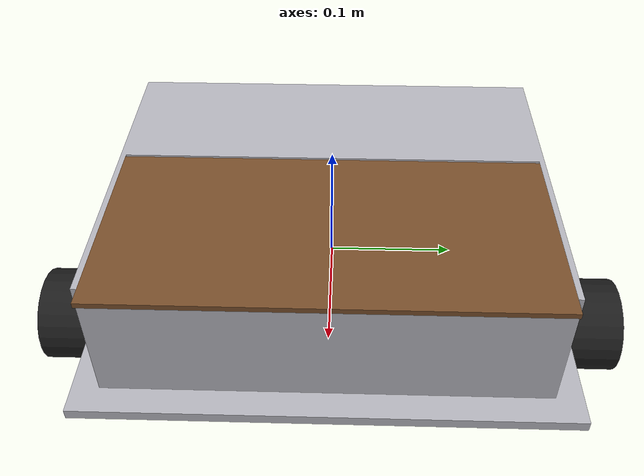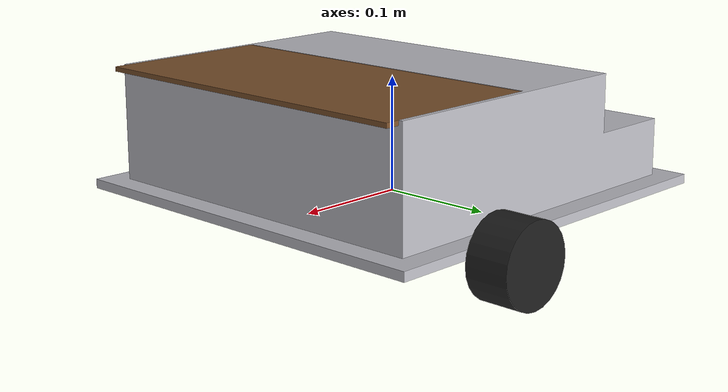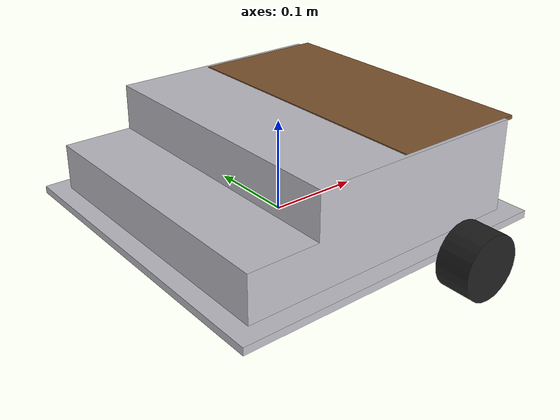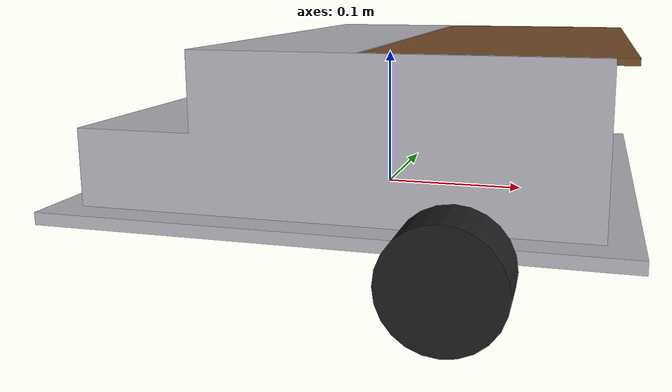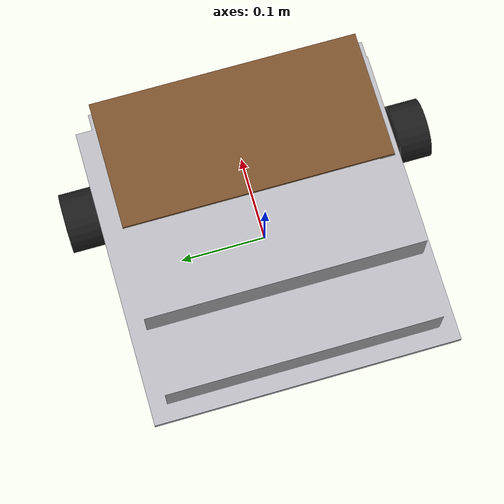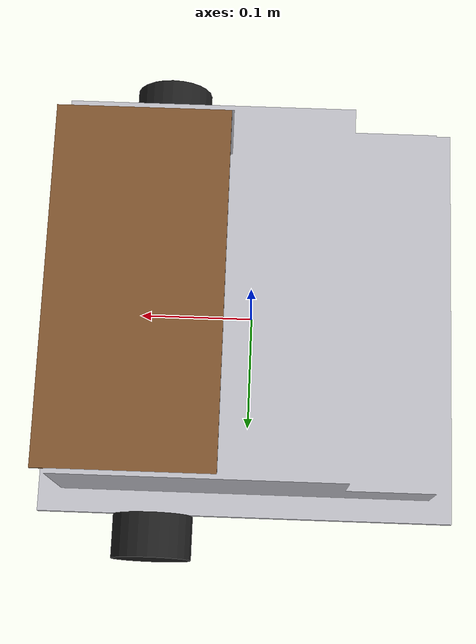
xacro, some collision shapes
<?xml version="1.0"?>
<robot xmlns:xacro="http://www.ros.org/wiki/xacro" name="libbot_bringup">

    <!-- Constants -->
    <xacro:property name="chassis_length" value="0.36" />
    <xacro:property name="chassis_breadth" value="0.36" />
    <xacro:property name="chassis_height" value="0.008" />

    <xacro:property name="payload_mass" value="4.0" />
    <xacro:property name="frame_mass" value="2.0" />

    <xacro:property name="wheel_length" value="0.038" />
    <xacro:property name="wheel_radius" value="0.035" />
    <xacro:property name="chassis_wheel_offset_height" value="0.01" />
    <xacro:property name="chassis_wheel_offset" value="0.1" />
    <xacro:property name="wheel_mass" value="0.1" />

    <xacro:property name="caster_pos_x" value="-0.1" />
    <xacro:property name="caster_pos_y" value="0.005" />

    <xacro:property name="door_length" value="${0.320-0.008}" />
    <xacro:property name="door_breadth" value="0.150" />
    <xacro:property name="door_height" value="0.004" />
    <xacro:property name="door_pos" value="${0.022} 0 ${0.11}" />
    <xacro:property name="door_joint_offset" value="${door_breadth/2}" />
    <xacro:property name="door_mass" value="0.050" />

    <!-- Wheel xacro -->
    <xacro:macro name="wheel" params="prefix reflect_x reflect_y">

        <link name="${prefix}_wheel_link">

            <visual>
                <geometry>
                    <cylinder radius="${wheel_radius}" length="${wheel_length}" />
                </geometry>
                <material name="black" />
            </visual>
            <collision>
                <geometry>
                    <cylinder radius="${wheel_radius}" length="${wheel_length}" />
                </geometry>
            </collision>
            <inertial>
                <mass value="${wheel_mass}" />
                <origin xyz="0 0 0" rpy="${pi/2} 0 0" />
                <inertia
                    ixx="${1/12*wheel_mass*(3*(wheel_radius*wheel_radius)+(wheel_length*wheel_length))}"
                    iyy="${1/12*wheel_mass*(3*(wheel_radius*wheel_radius)+(wheel_length*wheel_length))}"
                    izz="${1/2*wheel_mass*(wheel_radius*wheel_radius)}"
                    ixy="0.0" iyz="0.0" ixz="0.0" />
            </inertial>

        </link>

        <joint name="${prefix}_wheel_joint" type="continuous">

            <parent link="base_link" />
            <child link="${prefix}_wheel_link" />
            <origin
                xyz="${-reflect_x*((chassis_length/2)-chassis_wheel_offset)} ${-reflect_y*((chassis_breadth/2 + (wheel_length/2)))} 0.0"
                rpy="${pi/2} 0 0" />
            <axis xyz="0.0 0.0 -1.0" />
            <limit effort="0.56" velocity="12.56" />

        </joint>

    </xacro:macro>

    <!-- Frame -->
    <link name="base_footprint">
    </link>
    <link name="base_link">

        <visual>
            <origin
                xyz="${(chassis_length/2)} ${-(chassis_breadth/2)} ${chassis_height/2}"
                rpy="0 0 ${pi/2}" />
            <geometry>
                <mesh filename="file://$(find libbot_bringup)/urdf/meshes/chassis_frame.stl" />
            </geometry>
            <material name="silver" />
        </visual>
        <collision>
            <origin
                xyz="${(chassis_length/2)} ${-(chassis_breadth/2)} ${chassis_height/2}"
                rpy="0 0 ${pi/2}" />
            <geometry>
                <mesh filename="file://$(find libbot_bringup)/urdf/meshes/chassis_frame.stl" />
            </geometry>
        </collision>
        <inertial>
            <origin xyz="0 0 0.028" rpy="0 0 ${pi/2}" />
            <mass value="${frame_mass}" />
            <inertia ixx="0.023"
                iyy="0.025"
                izz="0.043"
                ixy="0.0" iyz="0.0" ixz="0.0" />
        </inertial>

    </link>
    <joint name="base_joint" type="fixed">

        <parent link="base_footprint" />
        <child link="base_link" />

    </joint>

    <!-- Door -->
    <link name="door_link">

        <visual>
            <origin xyz="0 -${door_joint_offset} 0" rpy="0 0 0" />
            <geometry>
                <box size="${door_length} ${door_breadth} ${door_height}" />
            </geometry>
            <material name="brown" />
        </visual>
        <collision>
            <origin xyz="0 -${door_joint_offset} 0" rpy="0 0 0" />
            <geometry>
                <box size="${door_length} ${door_breadth} ${door_height}" />
            </geometry>
        </collision>
        <inertial>
            <origin xyz="0 0 0" rpy="0 0 0" />
            <mass value="${door_mass}" />
            <inertia
                ixx="${1/12*door_mass*((door_length*door_length)+(door_breadth*door_breadth))}"
                iyy="${1/12*door_mass*((door_breadth*door_breadth)+(door_height*door_height))}"
                izz="${1/12*door_mass*((door_length*door_length)+(door_height*door_height))}"
                ixy="0.0" iyz="0.0" ixz="0.0" />
        </inertial>

    </link>
    <joint name="door_joint" type="revolute">

        <parent link="base_link" />
        <child link="door_link" />
        <origin
            xyz="${door_pos}"
            rpy="0 0 ${pi/2}" />
        <axis xyz="-1.0 0.0 0.0" />
        <limit upper="${pi/2}" lower="0.0" effort="10" velocity="1.0" />

    </joint>

    <!-- Wheels -->
    <xacro:wheel prefix="right" reflect_x="-1" reflect_y="1" />
    <xacro:wheel prefix="left" reflect_x="-1" reflect_y="-1" />

    <!-- Caster wheel -->
    <link name="caster_link">

        <visual>
            <origin
                xyz="0 0 0"
                rpy="0 0 0" />
            <geometry>
                <mesh filename="file://$(find libbot_bringup)/urdf/meshes/caster_wheel.stl" />
            </geometry>
            <material name="black" />
        </visual>
        <collision>
            <origin
                xyz="0.045 0.045 0"
                rpy="0 0 0" />
           <geometry>
                <sphere radius="0.035" />
            </geometry>
        </collision>

    </link>
    <joint name="caster_joint" type="fixed">

        <parent link="base_link" />
        <child link="caster_link" />
        <origin xyz="${caster_pos_x-0.04} ${-caster_pos_y-0.04} 0.0" rpy="0 0 0" />

    </joint>

</robot>
